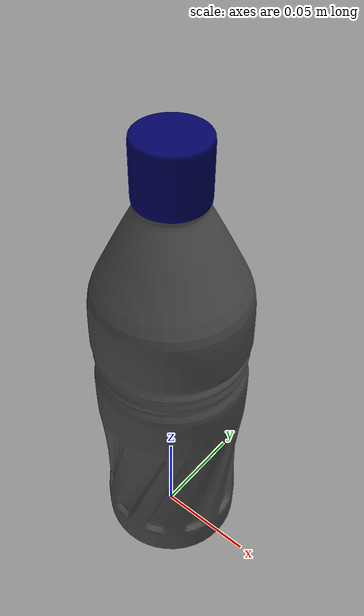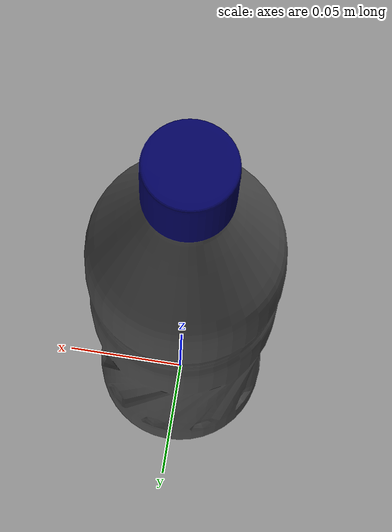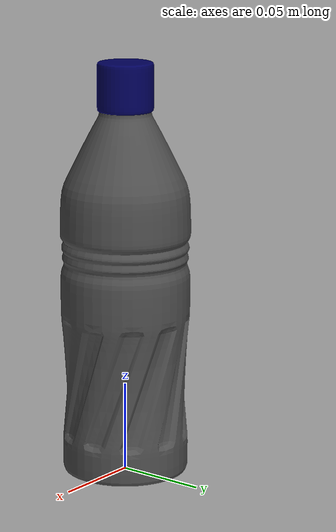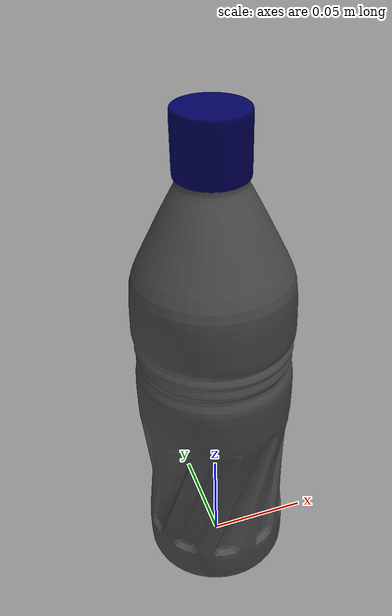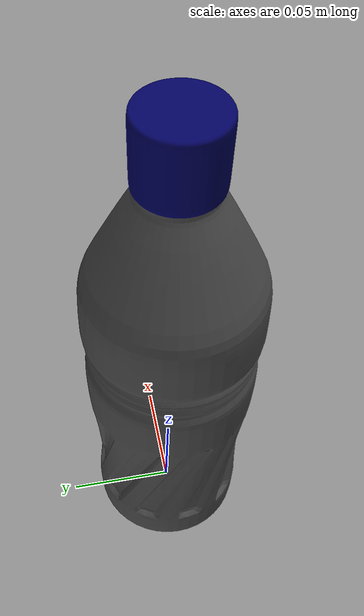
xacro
<?xml version="1.0"?>
<robot name="bottle">

  <link name="bottle_link">
    <inertial>
      <origin xyz="0 0 0" rpy="0 0 0"/>
      <mass value="0.5"/>
      <inertia ixx="1e-3" ixy="0" ixz="0" iyy="1e-3" iyz="0" izz="1e-3"/>
    </inertial>
    <visual>
      <origin xyz="0 0 0" rpy="0 0 0"/>
      <geometry>
          <mesh filename="package://aerial_handover/urdf/mesh/Water_bottle.dae" scale= "0.5 0.5 0.5"/>
      </geometry>
    </visual>
    <collision>
      <origin xyz="0 0 0" rpy="0 0 0"/>
      <geometry>
        <mesh filename="package://aerial_handover/urdf/mesh/Water_bottle.dae" scale="0.5 0.5 0.5"/>
      </geometry>
    </collision>
  </link>

</robot>
